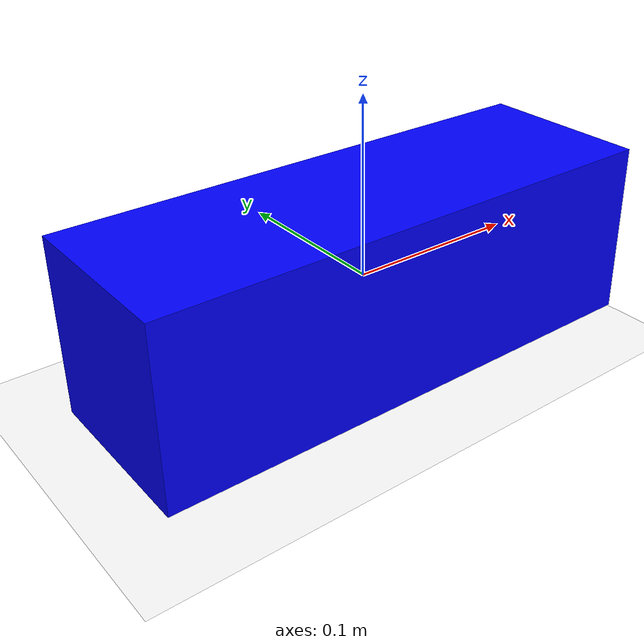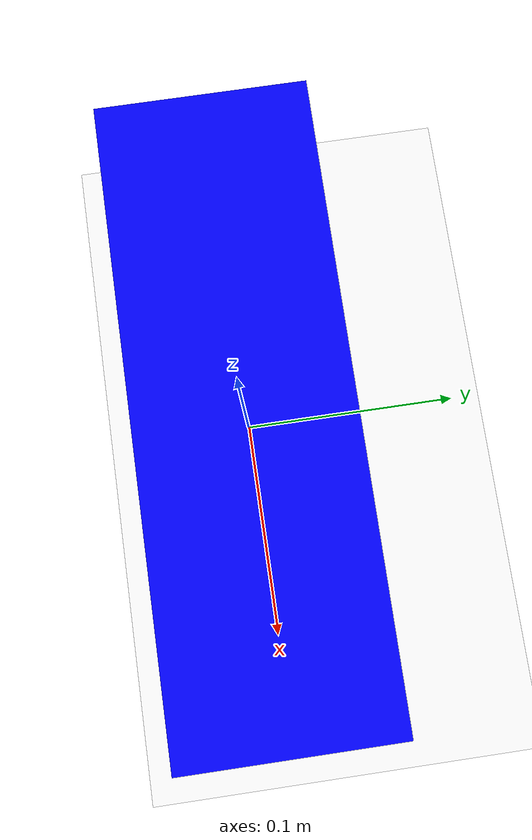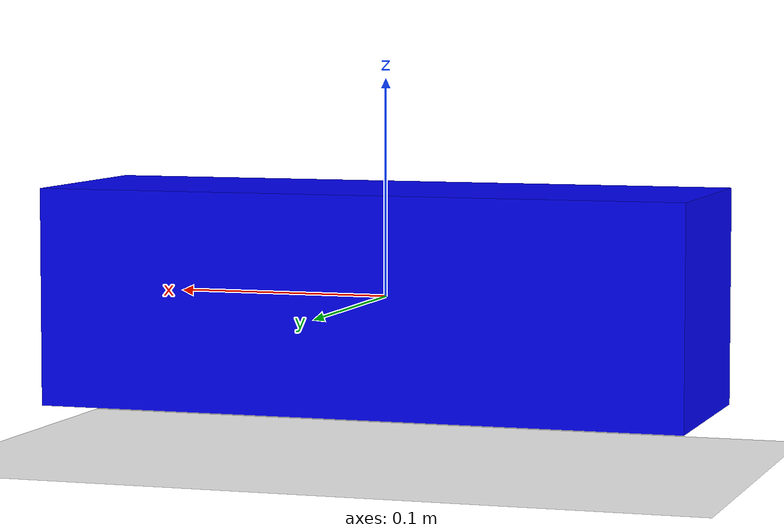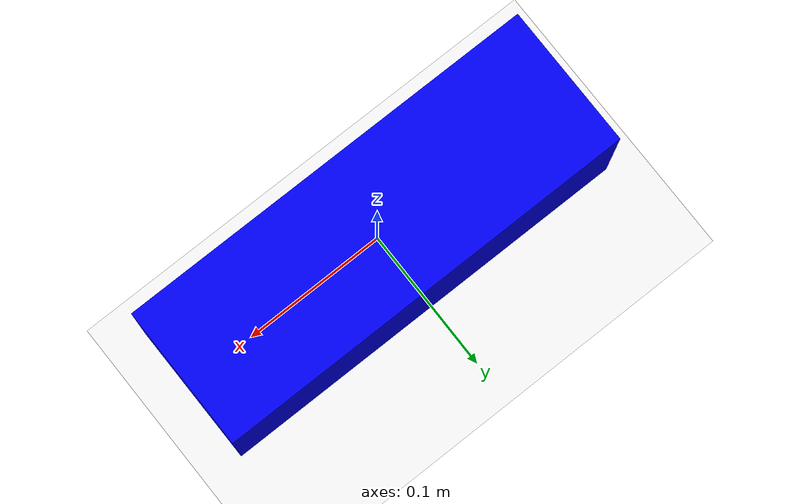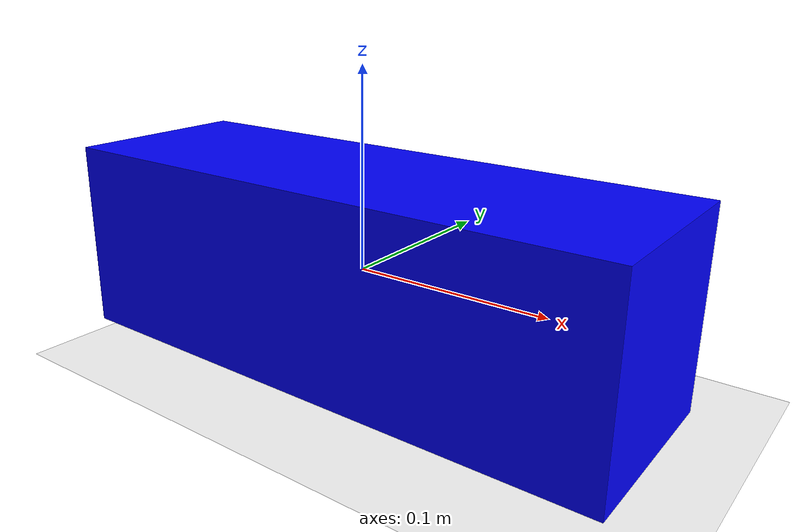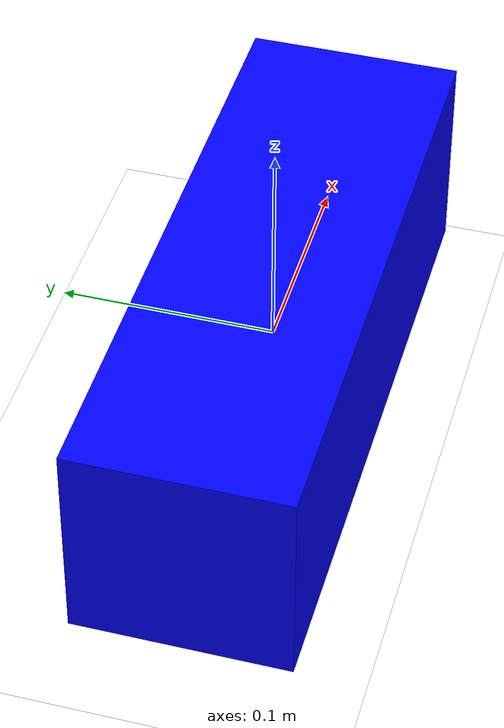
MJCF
<mujoco model="pushT">
    <option timestep="0.002" integrator="Euler" gravity="0 0 0.0" />

    <worldbody>

        <light diffuse=".5 .5 .5" pos="0 0 3" dir="0 0 -1" />

        <geom name="table" type="plane" pos="0 0.0 -0.07" size="2 2 0.1" contype="0" conaffinity="0"
            rgba="1 1 1 1" />

        <body name="pusher" pos="0.0 0 0.0">
            <geom name="pusher_geom" type="sphere" size="0.05" rgba="0 1 0 1"
                friction="1 0.001 0.0001" mass="1.0" />
            <joint name="pusher_x" type="slide" axis="1 0 0" limited="true" range="-1 1" />
            <joint name="pusher_y" type="slide" axis="0 1 0" limited="true" range="-1 1" />
        </body>

        <body name="slider" pos="0.0 0 0.0">
            <geom name="slider_geom" type="box" size="0.15 0.05 0.05" rgba="0 0 1 1"
                friction="1 0.1 0.1" mass="0.1" />
            <joint name="slider_x" type="slide" axis="1 0 0" limited="true" range="-1 1"
                damping="1.0" />
            <joint name="slider_y" type="slide" axis="0 1 0" limited="true" range="-1 1"
                damping="1.0" />
            <joint name="slider_z_rot" type="hinge" axis="0 0 1" damping="0.01" />
        </body>

        <body name="goal" pos="0.0 0 0.0">
            <geom name="goal_geom" type="box" size="0.15 0.05 0.05" rgba="1 0 0 0.1"
                density="0.00001" contype="0" conaffinity="0" />
            <joint name="goal_x" type="slide" axis="1 0 0" limited="true" range="-1 1" />
            <joint name="goal_y" type="slide" axis="0 1 0" limited="true" range="-1 1" />
            <joint name="goal_z_rot" type="hinge" axis="0 0 1" />
        </body>

    </worldbody>

    <actuator>
        <position name="pusher_x" joint="pusher_x" ctrllimited="true" ctrlrange="-1 1" kp="20" kv="6"/>
        <position name="pusher_y" joint="pusher_y" ctrllimited="true" ctrlrange="-1 1" kp="20" kv="6"/>
    </actuator>

</mujoco>
